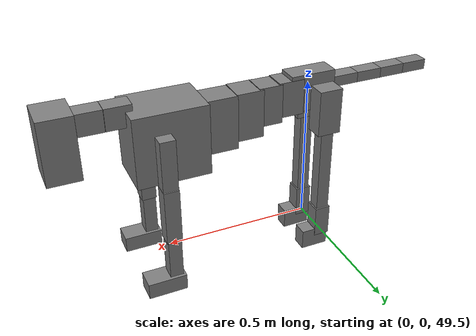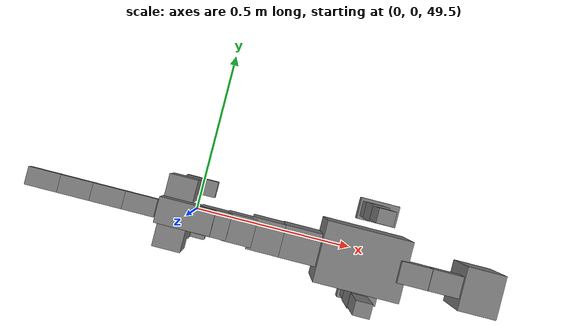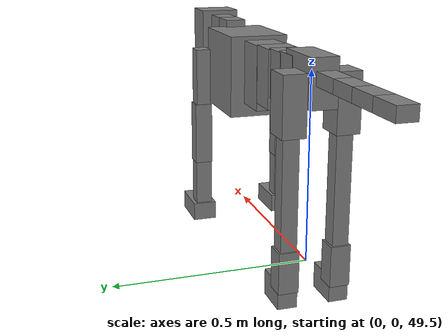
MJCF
<mujoco model="dog">

    <default>
        <joint armature="0.02" stiffness="1" damping="0.2" limited="true"/>
        <geom condim="3" friction="1 0.05 0.05" margin="0.01"/>
        <motor ctrllimited="true" ctrlrange="-1.0 1.0" forcelimited="true" gear="50"/>
    </default>

    <compiler inertiafromgeom="true" angle="radian"/>

    <option timestep="0.016" iterations="50" tolerance="1e-10" solver="Newton" jacobian="dense" cone="pyramidal"/>

    <size nconmax="20000" njmax="60000" nstack="5000000"/>
    <visual>
        <map force="0.1" zfar="30"/>
        <rgba haze="0.15 0.25 0.35 1"/>
        <quality shadowsize="2048"/>
        <global offwidth="800" offheight="800"/>
    </visual>

    <asset>
        <texture type="skybox" builtin="gradient" rgb1="0.3 0.5 0.7" rgb2="0 0 0" width="512" height="512"/>
        <texture name="texplane" type="2d" builtin="checker" rgb1=".2 .3 .4" rgb2=".1 0.15 0.2" width="512" height="512"
                 mark="cross" markrgb=".8 .8 .8"/>
        <texture name="texgeom" type="cube" builtin="flat" mark="cross" width="127" height="1278" rgb1="0.8 0.6 0.4"
                 rgb2="0.8 0.6 0.4" markrgb="1 1 1" random="0.01"/>

        <material name="matplane" reflectance="0.3" texture="texplane" texrepeat="1 1" texuniform="true"/>
        <material name="matgeom" texture="texgeom" texuniform="true" rgba="0.8 0.6 .4 1"/>
    </asset>

    <worldbody>
        <geom name="floor" pos="0 0 0" size="0 0 .25" type="plane" material="matplane" condim="3"/>

        <light directional="false" diffuse=".2 .2 .2" specular="0 0 0" pos="0 0 5" dir="0 0 -1" castshadow="false"/>
        <light mode="targetbodycom" target="torso" directional="false" diffuse=".8 .8 .8" specular="0.3 0.3 0.3"
               pos="0 0 4.0" dir="0 0 -1"/>

        <body name="root" pos="0 0 50">
            <freejoint name="root_1"/>
            <geom type="box" pos="0 0 -0.02" size="0.0774  0.0358  0.063" density="2030"/>

            <body name="spine1" pos="0.054 0 0">
                <joint name="spine1_y" axis="0 1 0" range="0 0.7" limited="true"/>
                <geom type="box" pos="0.02375 0 -0.03" size="0.04375  0.0375  0.05985" density="2030"/>

                <body name="spine2" pos="0.0612 0 0">
                    <joint name="spine2_y" axis="0 1 0" range="-0.15 0.15" limited="true"/>
                    <geom type="box" pos="0.03555  0  -0.04" size="0.04055  0.039  0.06615" density="2030"/>

                    <body name="spine3" pos="0.0730 0 0">
                        <joint name="spine3_y" axis="0 1 0" range="-0.15 0.15" limited="true"/>
                        <geom type="box" pos="0.03555  0  -0.057" size="0.04555  0.0445  0.081" density="2030"/>

                        <body name="spine4" pos="0.0780 0 0">
                            <joint name="spine4_y" axis="0 1 0" range="-0.15 0.15" limited="true"/>
                            <geom type="box" pos="0.05265  0  -0.07" size="0.05265  0.045  0.09135" density="2030"/>

                            <body name="torso" pos="0.1082 0 0">
                                <joint name="torso_y" axis="0 1 0" range="-0.15 0.15" limited="true"/>
                                <geom type="box" pos="0.11925  0  -0.085" size="0.11925  0.085  0.11745"
                                      density="2030"/>

                                <body name="neck1" pos="0.2160  0   0.0180">
                                    <joint name="neck1_y" axis="0 1 0" range="-1.2  -1" limited="true"/>
                                    <geom type="box" pos="0.0423  0  0" size="0.0423  0.03  0.036" density="2325"/>

                                    <body name="neck2" pos="0.0853  0  0">
                                        <joint name="neck2_y" axis="0 1 0" range="0.1  0" limited="true"/>
                                        <geom type="box" pos="0.0423  0  0" size="0.0423  0.03  0.036" density="2325"/>

                                        <body name="head" pos="0.0853  0  0">
                                            <joint name="head_y" axis="0 1 0" range="-0.3  -0.2" limited="true"/>
                                            <geom type="box" pos="0.0531  0  -0.055" size="0.0531  0.06  0.1044"
                                                  density="4030"/>

                                        </body>
                                    </body>
                                </body>

                                <body name="front_shoulder" pos="0.156  0   -0.0480">
                                    <joint name="front_shoulder_y" axis="0 1 0" range="-1 1.5" limited="true"/>
                                    <geom type="box" pos="0 0.13 -0.0706" size="0.0245  0.0210  0.0973" density="1158"/>
                                    <geom type="box" pos="0 -0.13 -0.0706" size="0.0245  0.0210  0.0973"
                                          density="1158"/>

                                    <body name="front_elbow" pos="0  0  -0.1413">
                                        <joint name="front_elbow_y" axis="0 1 0" range="-2 0" limited="true"/>
                                        <geom type="box" pos="0 0.13 -0.0921" size="0.0249  0.0255  0.0921"
                                              density="1081"/>
                                        <geom type="box" pos="0 -0.13 -0.0921" size="0.0249  0.0255  0.0921"
                                              density="1081"/>

                                        <body name="front_wrist" pos="0  0  -0.1841">
                                            <joint name="front_wrist_y" axis="0 1 0" range="-0.2 0" limited="true"/>
                                            <geom type="box" pos="0 0.13 -0.0741" size="0.0218  0.0242  0.0873"
                                                  density="1664"/>
                                            <geom type="box" pos="0 -0.13 -0.0741" size="0.0218  0.0242  0.0873"
                                                  density="1664"/>

                                            <body name="front_finger_end" pos="0  0  -0.1483">
                                                <joint name="front_finger_y" axis="0 1 0" range="-0.4 1"
                                                       limited="true"/>
                                                <geom type="box" pos="0.0346  0.13  -0.0120"
                                                      size="0.0635  0.0346  0.0270" density="1515"/>
                                                <geom type="box" pos="0.0346  -0.13  -0.0120"
                                                      size="0.0635  0.0346  0.0270" density="1515"/>

                                            </body>

                                        </body>
                                    </body>
                                </body>

                            </body>
                        </body>
                    </body>
                </body>
            </body>

            <body name="back_hip" pos="-0.03 0 -0.018">
                <joint name="back_hip_y" axis="0 1 0" range="-1.5 0.3" limited="true"/>
                <geom type="box" pos="0 0.07 -0.0550" size="0.0397  0.0312  0.0778" density="1154"/>
                <geom type="box" pos="0 -0.07 -0.0550" size="0.0397  0.0312  0.0778" density="1154"/>

                <body name="back_knee" pos="0  0  -0.1100">
                    <joint name="back_knee_y" axis="0 1 0" range="0 2.8" limited="true"/>
                    <geom type="box" pos="0 0.07 -0.1642" size="0.0220  0.0217  0.1797" density="1227"/>
                    <geom type="box" pos="0 -0.07 -0.1642" size="0.0220  0.0217  0.1797" density="1227"/>

                    <body name="back_ankle" pos="0  0  -0.3283">
                        <joint name="back_ankle_y" axis="0 1 0" range="-2.2 0" limited="true"/>
                        <geom type="box" pos="0 0.07 -0.0440" size="0.0270  0.0270  0.0552" density="1284"/>
                        <geom type="box" pos="0 -0.07 -0.0440" size="0.0270  0.0270  0.0552" density="1284"/>

                        <body name="back_toe_end" pos="0  0  -0.0880">
                            <joint name="back_toe_y" axis="0 1 0" range="-0.4 1" limited="true"/>
                            <geom type="box" pos="0.0259  0.07  -0.0198" size="0.0475  0.0259  0.0348" density="1515"/>
                            <geom type="box" pos="0.0259  -0.07  -0.0198" size="0.0475  0.0259  0.0348" density="1515"/>

                        </body>
                    </body>
                </body>
            </body>

            <body name="tail1" pos="-0.074 0 -0.006">
                <joint name="tail1_y" axis="0 1 0" range="-0.2 0.2" limited="true"/>
                <geom type="box" pos="-0.0536  0  0" size="0.045  0.025  0.0175" density="1587"/>

                <body name="tail2" pos="-0.09 0 0">
                    <joint name="tail2_y" axis="0 1 0" range="-0.2 0.2" limited="true"/>
                    <geom type="box" pos="-0.0536  0  0" size="0.045  0.025  0.0175" density="1587"/>

                    <body name="tail3" pos="-0.09 0 0">
                        <joint name="tail3_y" axis="0 1 0" range="-0.2 0.2" limited="true"/>
                        <geom type="box" pos="-0.0536  0  0" size="0.045  0.025  0.0175" density="1587"/>

                        <body name="tail4" pos="-0.09 0 0">
                            <joint name="tail4_y" axis="0 1 0" range="-0.2 0.2" limited="true"/>
                            <geom type="box" pos="-0.0536  0  0" size="0.045  0.025  0.0175" density="1587"/>

                        </body>
                    </body>
                </body>
            </body>
        </body>
    </worldbody>

    <actuator>
        <motor joint="spine1_y" forcerange="-150 150     "/>
        <motor joint="spine2_y" forcerange="-150 150     "/>
        <motor joint="spine3_y" forcerange="-150 150     "/>
        <motor joint="spine4_y" forcerange="-150 150     "/>
        <motor joint="torso_y" forcerange="-150 150     "/>
        <motor joint="neck1_y" forcerange="-100 100       "/>
        <motor joint="neck2_y" forcerange="-100 100       "/>
        <motor joint="head_y" forcerange="-150 150       "/>
        <motor joint="front_shoulder_y" forcerange="-133.33 106.37"/>
        <motor joint="front_elbow_y" forcerange="-180.82 104.51"/>
        <motor joint="front_wrist_y" forcerange="-131.44 62.07"/>
        <motor joint="front_finger_y" forcerange="-72.19 72.40"/>
        <motor joint="back_hip_y" forcerange="-328.28 287.31"/>
        <motor joint="back_knee_y" forcerange="-232.82 282.35"/>
        <motor joint="back_angle_y" forcerange="-120.51 212.22"/>
        <motor joint="back_toe_y" forcerange="-87.28 39.87"/>
        <motor joint="tail1_y" forcerange="-50 50     "/>
        <motor joint="tail2_y" forcerange="-50 50     "/>
        <motor joint="tail3_y" forcerange="-50 50     "/>
        <motor joint="tail4_y" forcerange="-50 50     "/>
    </actuator>
</mujoco>
